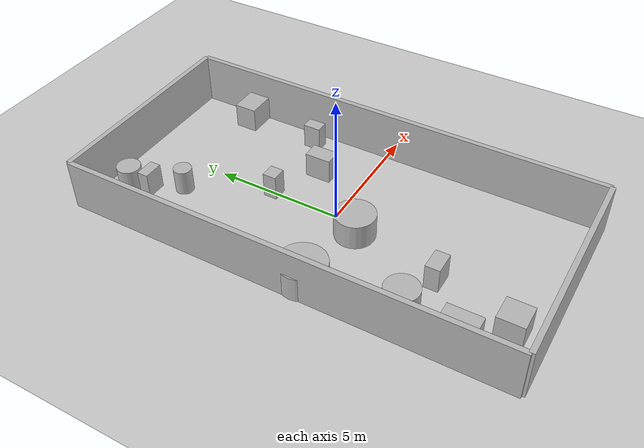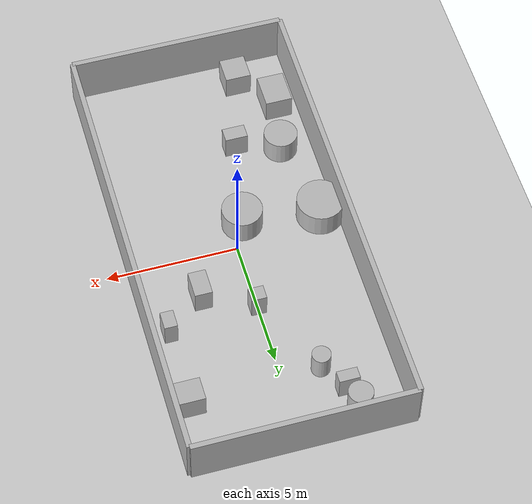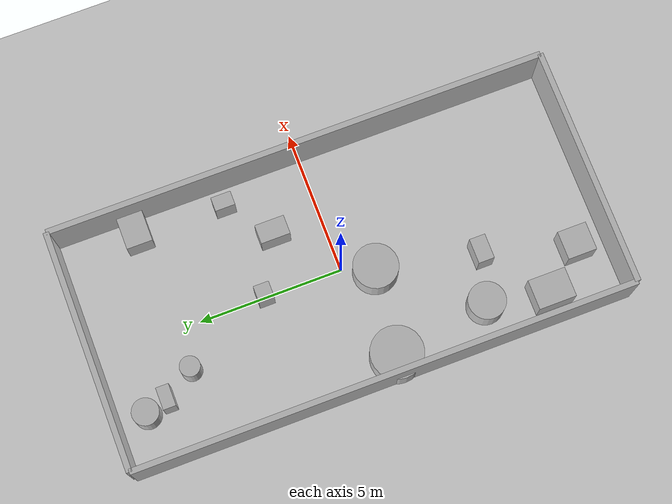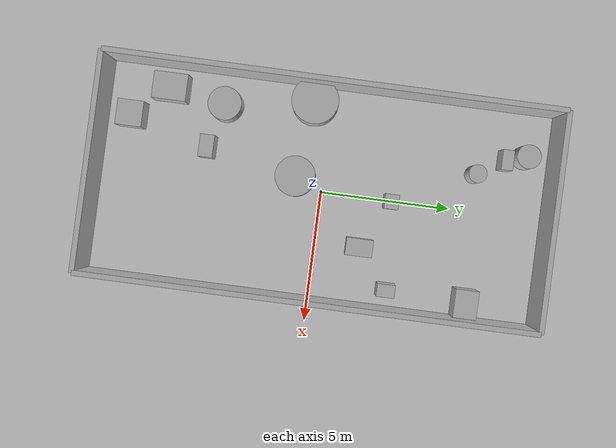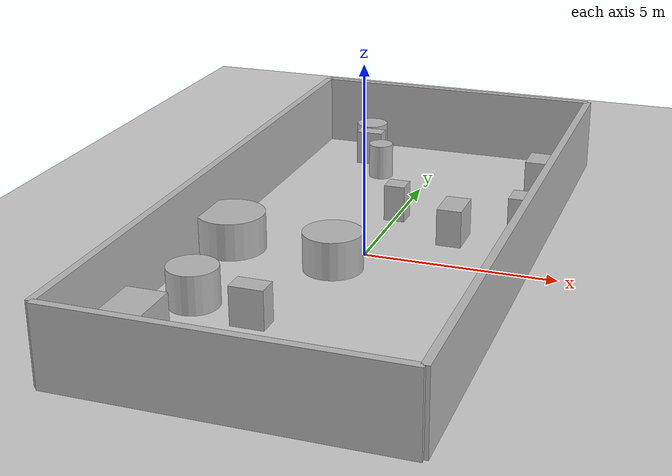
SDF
<?xml version="1.0"?>
<sdf version="1.6">
  <world name="env_54">

    <include><uri>model://ground_plane</uri></include>
    <include><uri>model://sun</uri></include>

    <!-- WALLS -->
    <model name="wall_north"><static>true</static><pose>0 8.648511466680441 1 0 0 0</pose>
      <link name="link"><collision name="collision">
        <geometry><box><size>8.267138183858567 0.2 2</size></box></geometry>
      </collision><visual name="visual">
        <geometry><box><size>8.267138183858567 0.2 2</size></box></geometry>
      </visual></link>
    </model>

    <model name="wall_south"><static>true</static><pose>0 -8.648511466680441 1 0 0 0</pose>
      <link name="link"><collision name="collision">
        <geometry><box><size>8.267138183858567 0.2 2</size></box></geometry>
      </collision><visual name="visual">
        <geometry><box><size>8.267138183858567 0.2 2</size></box></geometry>
      </visual></link>
    </model>

    <model name="wall_east"><static>true</static><pose>4.133569091929283 0 1 0 0 1.57</pose>
      <link name="link"><collision name="collision">
        <geometry><box><size>17.297022933360882 0.2 2</size></box></geometry>
      </collision><visual name="visual">
        <geometry><box><size>17.297022933360882 0.2 2</size></box></geometry>
      </visual></link>
    </model>

    <model name="wall_west"><static>true</static><pose>-4.133569091929283 0 1 0 0 1.57</pose>
      <link name="link"><collision name="collision">
        <geometry><box><size>17.297022933360882 0.2 2</size></box></geometry>
      </collision><visual name="visual">
        <geometry><box><size>17.297022933360882 0.2 2</size></box></geometry>
      </visual></link>
    </model>

    <!-- SENSOR -->

    <model name="lidar_sensor">
      <static>true</static>
      <pose>-0.9018197037200095 -1.7687961157007832 0.4 0 0 0</pose>
      <link name="link">
        <sensor name="lidar" type="ray">
          <pose>0 0 0 0 0 0</pose>
          <visualize>true</visualize>
          <always_on>true</always_on>
          <update_rate>10</update_rate>
          <ray>
            <scan><horizontal>
              <samples>120</samples>
              <resolution>1</resolution>
              <min_angle>-3.14159</min_angle>
              <max_angle>3.14159</max_angle>
            </horizontal></scan>
            <range><min>0.15</min><max>20.0</max><resolution>0.01</resolution></range>
          </ray>
          <plugin name="lidar_plugin" filename="liblidar_plugin.so"/>
        </sensor>
      </link>
    </model>

    <!-- OBSTACLES -->

    <model name="obstacle_0">
      <static>true</static>
      <pose>-2.842136087389928 -4.0337565491994845 0.5 0 0 0</pose>
      <link name="link">
        <collision name="collision">
          <geometry><cylinder><radius>0.64</radius><length>1.0</length></cylinder></geometry>
        </collision>
        <visual name="visual">
          <geometry><cylinder><radius>0.64</radius><length>1.0</length></cylinder></geometry>
        </visual>
      </link>
    </model>

    <model name="obstacle_1">
      <static>true</static>
      <pose>-3.224384140101432 -6.174369359718119 0.5 0 0 0</pose>
      <link name="link">
        <collision name="collision">
          <geometry><box><size>1.03 1.3 1.0</size></box></geometry>
        </collision>
        <visual name="visual">
          <geometry><box><size>1.03 1.3 1.0</size></box></geometry>
        </visual>
      </link>
    </model>

    <model name="obstacle_2">
      <static>true</static>
      <pose>-2.027701386262079 -7.556737727214301 0.5 0 0 0</pose>
      <link name="link">
        <collision name="collision">
          <geometry><box><size>0.98 1.0 1.0</size></box></geometry>
        </collision>
        <visual name="visual">
          <geometry><box><size>0.98 1.0 1.0</size></box></geometry>
        </visual>
      </link>
    </model>

    <model name="obstacle_3">
      <static>true</static>
      <pose>-2.340390373264242 7.620317625480924 0.5 0 0 0</pose>
      <link name="link">
        <collision name="collision">
          <geometry><cylinder><radius>0.46</radius><length>1.0</length></cylinder></geometry>
        </collision>
        <visual name="visual">
          <geometry><cylinder><radius>0.46</radius><length>1.0</length></cylinder></geometry>
        </visual>
      </link>
    </model>

    <model name="obstacle_4">
      <static>true</static>
      <pose>-2.1134198456101903 6.842123109791828 0.5 0 0 0</pose>
      <link name="link">
        <collision name="collision">
          <geometry><box><size>0.77 0.44 1.0</size></box></geometry>
        </collision>
        <visual name="visual">
          <geometry><box><size>0.77 0.44 1.0</size></box></geometry>
        </visual>
      </link>
    </model>

    <model name="obstacle_5">
      <static>true</static>
      <pose>-1.4526297552229526 5.785124458558903 0.5 0 0 0</pose>
      <link name="link">
        <collision name="collision">
          <geometry><cylinder><radius>0.35</radius><length>1.0</length></cylinder></geometry>
        </collision>
        <visual name="visual">
          <geometry><cylinder><radius>0.35</radius><length>1.0</length></cylinder></geometry>
        </visual>
      </link>
    </model>

    <model name="obstacle_6">
      <static>true</static>
      <pose>-1.1659258590002892 -4.5191554967273655 0.5 0 0 0</pose>
      <link name="link">
        <collision name="collision">
          <geometry><box><size>0.86 0.55 1.0</size></box></geometry>
        </collision>
        <visual name="visual">
          <geometry><box><size>0.86 0.55 1.0</size></box></geometry>
        </visual>
      </link>
    </model>

    <model name="obstacle_7">
      <static>true</static>
      <pose>1.8904638565340797 1.7066539950610604 0.5 0 0 0</pose>
      <link name="link">
        <collision name="collision">
          <geometry><box><size>0.66 1.02 1.0</size></box></geometry>
        </collision>
        <visual name="visual">
          <geometry><box><size>0.66 1.02 1.0</size></box></geometry>
        </visual>
      </link>
    </model>

    <model name="obstacle_8">
      <static>true</static>
      <pose>-3.400282174722568 -0.6604679252460404 0.5 0 0 0</pose>
      <link name="link">
        <collision name="collision">
          <geometry><cylinder><radius>0.9</radius><length>1.0</length></cylinder></geometry>
        </collision>
        <visual name="visual">
          <geometry><cylinder><radius>0.9</radius><length>1.0</length></cylinder></geometry>
        </visual>
      </link>
    </model>

    <model name="obstacle_9">
      <static>true</static>
      <pose>3.592864087221743 5.972184353109627 0.5 0 0 0</pose>
      <link name="link">
        <collision name="collision">
          <geometry><box><size>1.28 0.89 1.0</size></box></geometry>
        </collision>
        <visual name="visual">
          <geometry><box><size>1.28 0.89 1.0</size></box></geometry>
        </visual>
      </link>
    </model>

    <model name="obstacle_10">
      <static>true</static>
      <pose>-0.46929566081428087 -1.044166727092212 0.5 0 0 0</pose>
      <link name="link">
        <collision name="collision">
          <geometry><cylinder><radius>0.77</radius><length>1.0</length></cylinder></geometry>
        </collision>
        <visual name="visual">
          <geometry><cylinder><radius>0.77</radius><length>1.0</length></cylinder></geometry>
        </visual>
      </link>
    </model>

    <model name="obstacle_11">
      <static>true</static>
      <pose>3.38139359470446 2.9091636123006275 0.5 0 0 0</pose>
      <link name="link">
        <collision name="collision">
          <geometry><box><size>0.49 0.69 1.0</size></box></geometry>
        </collision>
        <visual name="visual">
          <geometry><box><size>0.49 0.69 1.0</size></box></geometry>
        </visual>
      </link>
    </model>

    <model name="obstacle_12">
      <static>true</static>
      <pose>0.018664688638198257 2.7005724506372104 0.5 0 0 0</pose>
      <link name="link">
        <collision name="collision">
          <geometry><box><size>0.57 0.54 1.0</size></box></geometry>
        </collision>
        <visual name="visual">
          <geometry><box><size>0.57 0.54 1.0</size></box></geometry>
        </visual>
      </link>
    </model>

  </world>
</sdf>
